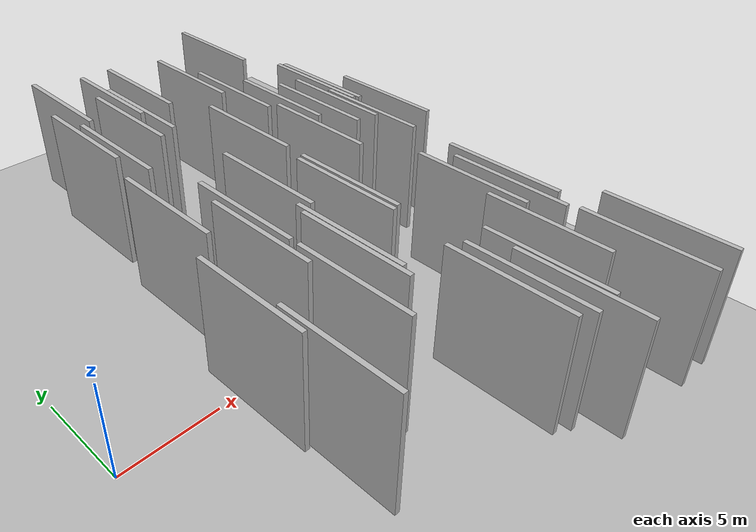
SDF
<?xml version="1.0" encoding="utf-8"?>

<sdf version="1.6">

   <world name="default">

      <gui fullscreen="0">

         <camera name="user_camera">

            <pose>-15 0 4.57585 0 0 0</pose>

            <view_controller>orbit</view_controller>

         </camera>

      </gui>

      <scene>

         <sky>

           <clouds>

             <speed>12</speed>

           </clouds>

         </sky>

         <ambient>0.4 0.4 0.4 1</ambient>

         <background>0.7 0.7 0.7 1</background>

         <shadows>1</shadows>

      </scene>

      <gravity>0 0 -9.8066</gravity>

      <magnetic_field>6e-06 2.3e-05 -4.2e-05</magnetic_field>

      <physics default="0" name="default_physics" type="ode">

         <ode>

            <solver>

               <type>quick</type>

               <iters>10</iters>

               <sor>1.0</sor>

               <use_dynamic_moi_rescaling>0</use_dynamic_moi_rescaling>

            </solver>

            <constraints>

               <cfm>0</cfm>

               <erp>0.2</erp>

               <contact_max_correcting_vel>100</contact_max_correcting_vel>

               <contact_surface_layer>0.001</contact_surface_layer>

            </constraints>

         </ode>

         <max_step_size>0.004</max_step_size>

         <real_time_factor>1</real_time_factor>

         <real_time_update_rate>250</real_time_update_rate>

      </physics>

      <light name="sun" type="directional">

         <cast_shadows>1</cast_shadows>

         <pose>0 0 10 0 0 0</pose>

         <diffuse>0.8 0.8 0.8 1</diffuse>

         <specular>0.2 0.2 0.2 1</specular>

         <attenuation>

            <range>1000</range>

            <constant>0.9</constant>

            <linear>0.01</linear>

            <quadratic>0.001</quadratic>

         </attenuation>

         <direction>-0.5 0.1 -0.9</direction>

      </light>

      <include>

         <name>ground_plane_1</name>

         <uri>model://HANNAS_ground_plane</uri>

         <pose>0 0 0  0 0 0</pose>

      </include>

      <include>

         <name>ground_plane_2</name>

         <uri>model://HANNAS_ground_plane</uri>

         <pose>100 0 0  0 0 0</pose>

      </include>

      <model name="HANNAS_wall_1">

         <static>1</static>

         <pose frame="">10.9724 -11.4936 5.0 0.000000 0.000000 1.570796</pose>

         <link name="link">

            <pose frame="">0 0 2.50 0 0 0</pose>

            <collision name="collision">

               <geometry>

                  <box>

                     <size>5.00 0.2 5.00</size>

                  </box>

               </geometry>

               <max_contacts>10</max_contacts>

               <surface>

                  <contact>

                     <ode/>

                  </contact>

                  <bounce/>

                  <friction>

                     <torsional>

                        <ode/>

                     </torsional>

                     <ode/>

                  </friction>

               </surface>

            </collision>

            <visual name="visual">

               <cast_shadows>0</cast_shadows>

               <geometry>

                  <box>

                     <size>5.00 0.2 5.00</size>

                  </box>

               </geometry>

               <material>

                  <script>

                     <uri>model://HANNAS_wall/materials/scripts</uri>

                     <uri>model://HANNAS_wall/materials/textures</uri>

                     <name>vrc/HANNAS_wall</name>

                  </script>

               </material>

            </visual>

            <self_collide>0</self_collide>

            <enable_wind>0</enable_wind>

            <kinematic>0</kinematic>

         </link>

      </model>

      <model name="HANNAS_wall_2">

         <static>1</static>

         <pose frame="">10.1718 -2.2187 5.0 0.000000 0.000000 1.570796</pose>

         <link name="link">

            <pose frame="">0 0 2.50 0 0 0</pose>

            <collision name="collision">

               <geometry>

                  <box>

                     <size>5.00 0.2 5.00</size>

                  </box>

               </geometry>

               <max_contacts>10</max_contacts>

               <surface>

                  <contact>

                     <ode/>

                  </contact>

                  <bounce/>

                  <friction>

                     <torsional>

                        <ode/>

                     </torsional>

                     <ode/>

                  </friction>

               </surface>

            </collision>

            <visual name="visual">

               <cast_shadows>0</cast_shadows>

               <geometry>

                  <box>

                     <size>5.00 0.2 5.00</size>

                  </box>

               </geometry>

               <material>

                  <script>

                     <uri>model://HANNAS_wall/materials/scripts</uri>

                     <uri>model://HANNAS_wall/materials/textures</uri>

                     <name>vrc/HANNAS_wall</name>

                  </script>

               </material>

            </visual>

            <self_collide>0</self_collide>

            <enable_wind>0</enable_wind>

            <kinematic>0</kinematic>

         </link>

      </model>

      <model name="HANNAS_wall_3">

         <static>1</static>

         <pose frame="">6.0777 -6.4689 5.0 0.000000 0.000000 1.570796</pose>

         <link name="link">

            <pose frame="">0 0 2.50 0 0 0</pose>

            <collision name="collision">

               <geometry>

                  <box>

                     <size>5.00 0.2 5.00</size>

                  </box>

               </geometry>

               <max_contacts>10</max_contacts>

               <surface>

                  <contact>

                     <ode/>

                  </contact>

                  <bounce/>

                  <friction>

                     <torsional>

                        <ode/>

                     </torsional>

                     <ode/>

                  </friction>

               </surface>

            </collision>

            <visual name="visual">

               <cast_shadows>0</cast_shadows>

               <geometry>

                  <box>

                     <size>5.00 0.2 5.00</size>

                  </box>

               </geometry>

               <material>

                  <script>

                     <uri>model://HANNAS_wall/materials/scripts</uri>

                     <uri>model://HANNAS_wall/materials/textures</uri>

                     <name>vrc/HANNAS_wall</name>

                  </script>

               </material>

            </visual>

            <self_collide>0</self_collide>

            <enable_wind>0</enable_wind>

            <kinematic>0</kinematic>

         </link>

      </model>

      <model name="HANNAS_wall_4">

         <static>1</static>

         <pose frame="">9.1397 10.0775 5.0 0.000000 0.000000 1.570796</pose>

         <link name="link">

            <pose frame="">0 0 2.50 0 0 0</pose>

            <collision name="collision">

               <geometry>

                  <box>

                     <size>5.00 0.2 5.00</size>

                  </box>

               </geometry>

               <max_contacts>10</max_contacts>

               <surface>

                  <contact>

                     <ode/>

                  </contact>

                  <bounce/>

                  <friction>

                     <torsional>

                        <ode/>

                     </torsional>

                     <ode/>

                  </friction>

               </surface>

            </collision>

            <visual name="visual">

               <cast_shadows>0</cast_shadows>

               <geometry>

                  <box>

                     <size>5.00 0.2 5.00</size>

                  </box>

               </geometry>

               <material>

                  <script>

                     <uri>model://HANNAS_wall/materials/scripts</uri>

                     <uri>model://HANNAS_wall/materials/textures</uri>

                     <name>vrc/HANNAS_wall</name>

                  </script>

               </material>

            </visual>

            <self_collide>0</self_collide>

            <enable_wind>0</enable_wind>

            <kinematic>0</kinematic>

         </link>

      </model>

      <model name="HANNAS_wall_5">

         <static>1</static>

         <pose frame="">7.4665 -5.1760 5.0 0.000000 0.000000 1.570796</pose>

         <link name="link">

            <pose frame="">0 0 2.50 0 0 0</pose>

            <collision name="collision">

               <geometry>

                  <box>

                     <size>5.00 0.2 5.00</size>

                  </box>

               </geometry>

               <max_contacts>10</max_contacts>

               <surface>

                  <contact>

                     <ode/>

                  </contact>

                  <bounce/>

                  <friction>

                     <torsional>

                        <ode/>

                     </torsional>

                     <ode/>

                  </friction>

               </surface>

            </collision>

            <visual name="visual">

               <cast_shadows>0</cast_shadows>

               <geometry>

                  <box>

                     <size>5.00 0.2 5.00</size>

                  </box>

               </geometry>

               <material>

                  <script>

                     <uri>model://HANNAS_wall/materials/scripts</uri>

                     <uri>model://HANNAS_wall/materials/textures</uri>

                     <name>vrc/HANNAS_wall</name>

                  </script>

               </material>

            </visual>

            <self_collide>0</self_collide>

            <enable_wind>0</enable_wind>

            <kinematic>0</kinematic>

         </link>

      </model>

      <model name="HANNAS_wall_6">

         <static>1</static>

         <pose frame="">8.0929 -0.0164 5.0 0.000000 0.000000 1.570796</pose>

         <link name="link">

            <pose frame="">0 0 2.50 0 0 0</pose>

            <collision name="collision">

               <geometry>

                  <box>

                     <size>5.00 0.2 5.00</size>

                  </box>

               </geometry>

               <max_contacts>10</max_contacts>

               <surface>

                  <contact>

                     <ode/>

                  </contact>

                  <bounce/>

                  <friction>

                     <torsional>

                        <ode/>

                     </torsional>

                     <ode/>

                  </friction>

               </surface>

            </collision>

            <visual name="visual">

               <cast_shadows>0</cast_shadows>

               <geometry>

                  <box>

                     <size>5.00 0.2 5.00</size>

                  </box>

               </geometry>

               <material>

                  <script>

                     <uri>model://HANNAS_wall/materials/scripts</uri>

                     <uri>model://HANNAS_wall/materials/textures</uri>

                     <name>vrc/HANNAS_wall</name>

                  </script>

               </material>

            </visual>

            <self_collide>0</self_collide>

            <enable_wind>0</enable_wind>

            <kinematic>0</kinematic>

         </link>

      </model>

      <model name="HANNAS_wall_7">

         <static>1</static>

         <pose frame="">14.3893 -6.3644 5.0 0.000000 0.000000 1.570796</pose>

         <link name="link">

            <pose frame="">0 0 2.50 0 0 0</pose>

            <collision name="collision">

               <geometry>

                  <box>

                     <size>5.00 0.2 5.00</size>

                  </box>

               </geometry>

               <max_contacts>10</max_contacts>

               <surface>

                  <contact>

                     <ode/>

                  </contact>

                  <bounce/>

                  <friction>

                     <torsional>

                        <ode/>

                     </torsional>

                     <ode/>

                  </friction>

               </surface>

            </collision>

            <visual name="visual">

               <cast_shadows>0</cast_shadows>

               <geometry>

                  <box>

                     <size>5.00 0.2 5.00</size>

                  </box>

               </geometry>

               <material>

                  <script>

                     <uri>model://HANNAS_wall/materials/scripts</uri>

                     <uri>model://HANNAS_wall/materials/textures</uri>

                     <name>vrc/HANNAS_wall</name>

                  </script>

               </material>

            </visual>

            <self_collide>0</self_collide>

            <enable_wind>0</enable_wind>

            <kinematic>0</kinematic>

         </link>

      </model>

      <model name="HANNAS_wall_8">

         <static>1</static>

         <pose frame="">3.3117 -4.7731 5.0 0.000000 0.000000 1.570796</pose>

         <link name="link">

            <pose frame="">0 0 2.50 0 0 0</pose>

            <collision name="collision">

               <geometry>

                  <box>

                     <size>5.00 0.2 5.00</size>

                  </box>

               </geometry>

               <max_contacts>10</max_contacts>

               <surface>

                  <contact>

                     <ode/>

                  </contact>

                  <bounce/>

                  <friction>

                     <torsional>

                        <ode/>

                     </torsional>

                     <ode/>

                  </friction>

               </surface>

            </collision>

            <visual name="visual">

               <cast_shadows>0</cast_shadows>

               <geometry>

                  <box>

                     <size>5.00 0.2 5.00</size>

                  </box>

               </geometry>

               <material>

                  <script>

                     <uri>model://HANNAS_wall/materials/scripts</uri>

                     <uri>model://HANNAS_wall/materials/textures</uri>

                     <name>vrc/HANNAS_wall</name>

                  </script>

               </material>

            </visual>

            <self_collide>0</self_collide>

            <enable_wind>0</enable_wind>

            <kinematic>0</kinematic>

         </link>

      </model>

      <model name="HANNAS_wall_9">

         <static>1</static>

         <pose frame="">7.1729 7.8223 5.0 0.000000 0.000000 1.570796</pose>

         <link name="link">

            <pose frame="">0 0 2.50 0 0 0</pose>

            <collision name="collision">

               <geometry>

                  <box>

                     <size>5.00 0.2 5.00</size>

                  </box>

               </geometry>

               <max_contacts>10</max_contacts>

               <surface>

                  <contact>

                     <ode/>

                  </contact>

                  <bounce/>

                  <friction>

                     <torsional>

                        <ode/>

                     </torsional>

                     <ode/>

                  </friction>

               </surface>

            </collision>

            <visual name="visual">

               <cast_shadows>0</cast_shadows>

               <geometry>

                  <box>

                     <size>5.00 0.2 5.00</size>

                  </box>

               </geometry>

               <material>

                  <script>

                     <uri>model://HANNAS_wall/materials/scripts</uri>

                     <uri>model://HANNAS_wall/materials/textures</uri>

                     <name>vrc/HANNAS_wall</name>

                  </script>

               </material>

            </visual>

            <self_collide>0</self_collide>

            <enable_wind>0</enable_wind>

            <kinematic>0</kinematic>

         </link>

      </model>

      <model name="HANNAS_wall_10">

         <static>1</static>

         <pose frame="">4.9095 7.5499 5.0 0.000000 0.000000 1.570796</pose>

         <link name="link">

            <pose frame="">0 0 2.50 0 0 0</pose>

            <collision name="collision">

               <geometry>

                  <box>

                     <size>5.00 0.2 5.00</size>

                  </box>

               </geometry>

               <max_contacts>10</max_contacts>

               <surface>

                  <contact>

                     <ode/>

                  </contact>

                  <bounce/>

                  <friction>

                     <torsional>

                        <ode/>

                     </torsional>

                     <ode/>

                  </friction>

               </surface>

            </collision>

            <visual name="visual">

               <cast_shadows>0</cast_shadows>

               <geometry>

                  <box>

                     <size>5.00 0.2 5.00</size>

                  </box>

               </geometry>

               <material>

                  <script>

                     <uri>model://HANNAS_wall/materials/scripts</uri>

                     <uri>model://HANNAS_wall/materials/textures</uri>

                     <name>vrc/HANNAS_wall</name>

                  </script>

               </material>

            </visual>

            <self_collide>0</self_collide>

            <enable_wind>0</enable_wind>

            <kinematic>0</kinematic>

         </link>

      </model>

      <model name="HANNAS_wall_11">

         <static>1</static>

         <pose frame="">15.0552 1.2706 5.0 0.000000 0.000000 1.570796</pose>

         <link name="link">

            <pose frame="">0 0 2.50 0 0 0</pose>

            <collision name="collision">

               <geometry>

                  <box>

                     <size>5.00 0.2 5.00</size>

                  </box>

               </geometry>

               <max_contacts>10</max_contacts>

               <surface>

                  <contact>

                     <ode/>

                  </contact>

                  <bounce/>

                  <friction>

                     <torsional>

                        <ode/>

                     </torsional>

                     <ode/>

                  </friction>

               </surface>

            </collision>

            <visual name="visual">

               <cast_shadows>0</cast_shadows>

               <geometry>

                  <box>

                     <size>5.00 0.2 5.00</size>

                  </box>

               </geometry>

               <material>

                  <script>

                     <uri>model://HANNAS_wall/materials/scripts</uri>

                     <uri>model://HANNAS_wall/materials/textures</uri>

                     <name>vrc/HANNAS_wall</name>

                  </script>

               </material>

            </visual>

            <self_collide>0</self_collide>

            <enable_wind>0</enable_wind>

            <kinematic>0</kinematic>

         </link>

      </model>

      <model name="HANNAS_wall_12">

         <static>1</static>

         <pose frame="">12.9910 4.7460 5.0 0.000000 0.000000 1.570796</pose>

         <link name="link">

            <pose frame="">0 0 2.50 0 0 0</pose>

            <collision name="collision">

               <geometry>

                  <box>

                     <size>5.00 0.2 5.00</size>

                  </box>

               </geometry>

               <max_contacts>10</max_contacts>

               <surface>

                  <contact>

                     <ode/>

                  </contact>

                  <bounce/>

                  <friction>

                     <torsional>

                        <ode/>

                     </torsional>

                     <ode/>

                  </friction>

               </surface>

            </collision>

            <visual name="visual">

               <cast_shadows>0</cast_shadows>

               <geometry>

                  <box>

                     <size>5.00 0.2 5.00</size>

                  </box>

               </geometry>

               <material>

                  <script>

                     <uri>model://HANNAS_wall/materials/scripts</uri>

                     <uri>model://HANNAS_wall/materials/textures</uri>

                     <name>vrc/HANNAS_wall</name>

                  </script>

               </material>

            </visual>

            <self_collide>0</self_collide>

            <enable_wind>0</enable_wind>

            <kinematic>0</kinematic>

         </link>

      </model>

      <model name="HANNAS_wall_13">

         <static>1</static>

         <pose frame="">15.5084 4.8284 5.0 0.000000 0.000000 1.570796</pose>

         <link name="link">

            <pose frame="">0 0 2.50 0 0 0</pose>

            <collision name="collision">

               <geometry>

                  <box>

                     <size>5.00 0.2 5.00</size>

                  </box>

               </geometry>

               <max_contacts>10</max_contacts>

               <surface>

                  <contact>

                     <ode/>

                  </contact>

                  <bounce/>

                  <friction>

                     <torsional>

                        <ode/>

                     </torsional>

                     <ode/>

                  </friction>

               </surface>

            </collision>

            <visual name="visual">

               <cast_shadows>0</cast_shadows>

               <geometry>

                  <box>

                     <size>5.00 0.2 5.00</size>

                  </box>

               </geometry>

               <material>

                  <script>

                     <uri>model://HANNAS_wall/materials/scripts</uri>

                     <uri>model://HANNAS_wall/materials/textures</uri>

                     <name>vrc/HANNAS_wall</name>

                  </script>

               </material>

            </visual>

            <self_collide>0</self_collide>

            <enable_wind>0</enable_wind>

            <kinematic>0</kinematic>

         </link>

      </model>

      <model name="HANNAS_wall_14">

         <static>1</static>

         <pose frame="">16.1221 -11.7386 5.0 0.000000 0.000000 1.570796</pose>

         <link name="link">

            <pose frame="">0 0 2.50 0 0 0</pose>

            <collision name="collision">

               <geometry>

                  <box>

                     <size>5.00 0.2 5.00</size>

                  </box>

               </geometry>

               <max_contacts>10</max_contacts>

               <surface>

                  <contact>

                     <ode/>

                  </contact>

                  <bounce/>

                  <friction>

                     <torsional>

                        <ode/>

                     </torsional>

                     <ode/>

                  </friction>

               </surface>

            </collision>

            <visual name="visual">

               <cast_shadows>0</cast_shadows>

               <geometry>

                  <box>

                     <size>5.00 0.2 5.00</size>

                  </box>

               </geometry>

               <material>

                  <script>

                     <uri>model://HANNAS_wall/materials/scripts</uri>

                     <uri>model://HANNAS_wall/materials/textures</uri>

                     <name>vrc/HANNAS_wall</name>

                  </script>

               </material>

            </visual>

            <self_collide>0</self_collide>

            <enable_wind>0</enable_wind>

            <kinematic>0</kinematic>

         </link>

      </model>

      <model name="HANNAS_wall_15">

         <static>1</static>

         <pose frame="">10.2262 3.6799 5.0 0.000000 0.000000 1.570796</pose>

         <link name="link">

            <pose frame="">0 0 2.50 0 0 0</pose>

            <collision name="collision">

               <geometry>

                  <box>

                     <size>5.00 0.2 5.00</size>

                  </box>

               </geometry>

               <max_contacts>10</max_contacts>

               <surface>

                  <contact>

                     <ode/>

                  </contact>

                  <bounce/>

                  <friction>

                     <torsional>

                        <ode/>

                     </torsional>

                     <ode/>

                  </friction>

               </surface>

            </collision>

            <visual name="visual">

               <cast_shadows>0</cast_shadows>

               <geometry>

                  <box>

                     <size>5.00 0.2 5.00</size>

                  </box>

               </geometry>

               <material>

                  <script>

                     <uri>model://HANNAS_wall/materials/scripts</uri>

                     <uri>model://HANNAS_wall/materials/textures</uri>

                     <name>vrc/HANNAS_wall</name>

                  </script>

               </material>

            </visual>

            <self_collide>0</self_collide>

            <enable_wind>0</enable_wind>

            <kinematic>0</kinematic>

         </link>

      </model>

      <model name="HANNAS_wall_16">

         <static>1</static>

         <pose frame="">13.5578 -5.2801 5.0 0.000000 0.000000 1.570796</pose>

         <link name="link">

            <pose frame="">0 0 2.50 0 0 0</pose>

            <collision name="collision">

               <geometry>

                  <box>

                     <size>5.00 0.2 5.00</size>

                  </box>

               </geometry>

               <max_contacts>10</max_contacts>

               <surface>

                  <contact>

                     <ode/>

                  </contact>

                  <bounce/>

                  <friction>

                     <torsional>

                        <ode/>

                     </torsional>

                     <ode/>

                  </friction>

               </surface>

            </collision>

            <visual name="visual">

               <cast_shadows>0</cast_shadows>

               <geometry>

                  <box>

                     <size>5.00 0.2 5.00</size>

                  </box>

               </geometry>

               <material>

                  <script>

                     <uri>model://HANNAS_wall/materials/scripts</uri>

                     <uri>model://HANNAS_wall/materials/textures</uri>

                     <name>vrc/HANNAS_wall</name>

                  </script>

               </material>

            </visual>

            <self_collide>0</self_collide>

            <enable_wind>0</enable_wind>

            <kinematic>0</kinematic>

         </link>

      </model>

      <model name="HANNAS_wall_17">

         <static>1</static>

         <pose frame="">11.4427 9.3307 5.0 0.000000 0.000000 1.570796</pose>

         <link name="link">

            <pose frame="">0 0 2.50 0 0 0</pose>

            <collision name="collision">

               <geometry>

                  <box>

                     <size>5.00 0.2 5.00</size>

                  </box>

               </geometry>

               <max_contacts>10</max_contacts>

               <surface>

                  <contact>

                     <ode/>

                  </contact>

                  <bounce/>

                  <friction>

                     <torsional>

                        <ode/>

                     </torsional>

                     <ode/>

                  </friction>

               </surface>

            </collision>

            <visual name="visual">

               <cast_shadows>0</cast_shadows>

               <geometry>

                  <box>

                     <size>5.00 0.2 5.00</size>

                  </box>

               </geometry>

               <material>

                  <script>

                     <uri>model://HANNAS_wall/materials/scripts</uri>

                     <uri>model://HANNAS_wall/materials/textures</uri>

                     <name>vrc/HANNAS_wall</name>

                  </script>

               </material>

            </visual>

            <self_collide>0</self_collide>

            <enable_wind>0</enable_wind>

            <kinematic>0</kinematic>

         </link>

      </model>

      <model name="HANNAS_wall_18">

         <static>1</static>

         <pose frame="">12.0053 6.8655 5.0 0.000000 0.000000 1.570796</pose>

         <link name="link">

            <pose frame="">0 0 2.50 0 0 0</pose>

            <collision name="collision">

               <geometry>

                  <box>

                     <size>5.00 0.2 5.00</size>

                  </box>

               </geometry>

               <max_contacts>10</max_contacts>

               <surface>

                  <contact>

                     <ode/>

                  </contact>

                  <bounce/>

                  <friction>

                     <torsional>

                        <ode/>

                     </torsional>

                     <ode/>

                  </friction>

               </surface>

            </collision>

            <visual name="visual">

               <cast_shadows>0</cast_shadows>

               <geometry>

                  <box>

                     <size>5.00 0.2 5.00</size>

                  </box>

               </geometry>

               <material>

                  <script>

                     <uri>model://HANNAS_wall/materials/scripts</uri>

                     <uri>model://HANNAS_wall/materials/textures</uri>

                     <name>vrc/HANNAS_wall</name>

                  </script>

               </material>

            </visual>

            <self_collide>0</self_collide>

            <enable_wind>0</enable_wind>

            <kinematic>0</kinematic>

         </link>

      </model>

      <model name="HANNAS_wall_19">

         <static>1</static>

         <pose frame="">9.8760 -2.3170 5.0 0.000000 0.000000 1.570796</pose>

         <link name="link">

            <pose frame="">0 0 2.50 0 0 0</pose>

            <collision name="collision">

               <geometry>

                  <box>

                     <size>5.00 0.2 5.00</size>

                  </box>

               </geometry>

               <max_contacts>10</max_contacts>

               <surface>

                  <contact>

                     <ode/>

                  </contact>

                  <bounce/>

                  <friction>

                     <torsional>

                        <ode/>

                     </torsional>

                     <ode/>

                  </friction>

               </surface>

            </collision>

            <visual name="visual">

               <cast_shadows>0</cast_shadows>

               <geometry>

                  <box>

                     <size>5.00 0.2 5.00</size>

                  </box>

               </geometry>

               <material>

                  <script>

                     <uri>model://HANNAS_wall/materials/scripts</uri>

                     <uri>model://HANNAS_wall/materials/textures</uri>

                     <name>vrc/HANNAS_wall</name>

                  </script>

               </material>

            </visual>

            <self_collide>0</self_collide>

            <enable_wind>0</enable_wind>

            <kinematic>0</kinematic>

         </link>

      </model>

      <model name="HANNAS_wall_20">

         <static>1</static>

         <pose frame="">15.2842 4.9964 5.0 0.000000 0.000000 1.570796</pose>

         <link name="link">

            <pose frame="">0 0 2.50 0 0 0</pose>

            <collision name="collision">

               <geometry>

                  <box>

                     <size>5.00 0.2 5.00</size>

                  </box>

               </geometry>

               <max_contacts>10</max_contacts>

               <surface>

                  <contact>

                     <ode/>

                  </contact>

                  <bounce/>

                  <friction>

                     <torsional>

                        <ode/>

                     </torsional>

                     <ode/>

                  </friction>

               </surface>

            </collision>

            <visual name="visual">

               <cast_shadows>0</cast_shadows>

               <geometry>

                  <box>

                     <size>5.00 0.2 5.00</size>

                  </box>

               </geometry>

               <material>

                  <script>

                     <uri>model://HANNAS_wall/materials/scripts</uri>

                     <uri>model://HANNAS_wall/materials/textures</uri>

                     <name>vrc/HANNAS_wall</name>

                  </script>

               </material>

            </visual>

            <self_collide>0</self_collide>

            <enable_wind>0</enable_wind>

            <kinematic>0</kinematic>

         </link>

      </model>

      <model name="HANNAS_wall_21">

         <static>1</static>

         <pose frame="">14.5709 -11.7439 5.0 0.000000 0.000000 1.570796</pose>

         <link name="link">

            <pose frame="">0 0 2.50 0 0 0</pose>

            <collision name="collision">

               <geometry>

                  <box>

                     <size>5.00 0.2 5.00</size>

                  </box>

               </geometry>

               <max_contacts>10</max_contacts>

               <surface>

                  <contact>

                     <ode/>

                  </contact>

                  <bounce/>

                  <friction>

                     <torsional>

                        <ode/>

                     </torsional>

                     <ode/>

                  </friction>

               </surface>

            </collision>

            <visual name="visual">

               <cast_shadows>0</cast_shadows>

               <geometry>

                  <box>

                     <size>5.00 0.2 5.00</size>

                  </box>

               </geometry>

               <material>

                  <script>

                     <uri>model://HANNAS_wall/materials/scripts</uri>

                     <uri>model://HANNAS_wall/materials/textures</uri>

                     <name>vrc/HANNAS_wall</name>

                  </script>

               </material>

            </visual>

            <self_collide>0</self_collide>

            <enable_wind>0</enable_wind>

            <kinematic>0</kinematic>

         </link>

      </model>

      <model name="HANNAS_wall_22">

         <static>1</static>

         <pose frame="">4.3378 1.0388 5.0 0.000000 0.000000 1.570796</pose>

         <link name="link">

            <pose frame="">0 0 2.50 0 0 0</pose>

            <collision name="collision">

               <geometry>

                  <box>

                     <size>5.00 0.2 5.00</size>

                  </box>

               </geometry>

               <max_contacts>10</max_contacts>

               <surface>

                  <contact>

                     <ode/>

                  </contact>

                  <bounce/>

                  <friction>

                     <torsional>

                        <ode/>

                     </torsional>

                     <ode/>

                  </friction>

               </surface>

            </collision>

            <visual name="visual">

               <cast_shadows>0</cast_shadows>

               <geometry>

                  <box>

                     <size>5.00 0.2 5.00</size>

                  </box>

               </geometry>

               <material>

                  <script>

                     <uri>model://HANNAS_wall/materials/scripts</uri>

                     <uri>model://HANNAS_wall/materials/textures</uri>

                     <name>vrc/HANNAS_wall</name>

                  </script>

               </material>

            </visual>

            <self_collide>0</self_collide>

            <enable_wind>0</enable_wind>

            <kinematic>0</kinematic>

         </link>

      </model>

      <model name="HANNAS_wall_23">

         <static>1</static>

         <pose frame="">14.9870 -5.6555 5.0 0.000000 0.000000 1.570796</pose>

         <link name="link">

            <pose frame="">0 0 2.50 0 0 0</pose>

            <collision name="collision">

               <geometry>

                  <box>

                     <size>5.00 0.2 5.00</size>

                  </box>

               </geometry>

               <max_contacts>10</max_contacts>

               <surface>

                  <contact>

                     <ode/>

                  </contact>

                  <bounce/>

                  <friction>

                     <torsional>

                        <ode/>

                     </torsional>

                     <ode/>

                  </friction>

               </surface>

            </collision>

            <visual name="visual">

               <cast_shadows>0</cast_shadows>

               <geometry>

                  <box>

                     <size>5.00 0.2 5.00</size>

                  </box>

               </geometry>

               <material>

                  <script>

                     <uri>model://HANNAS_wall/materials/scripts</uri>

                     <uri>model://HANNAS_wall/materials/textures</uri>

                     <name>vrc/HANNAS_wall</name>

                  </script>

               </material>

            </visual>

            <self_collide>0</self_collide>

            <enable_wind>0</enable_wind>

            <kinematic>0</kinematic>

         </link>

      </model>

      <model name="HANNAS_wall_24">

         <static>1</static>

         <pose frame="">13.8577 3.3101 5.0 0.000000 0.000000 1.570796</pose>

         <link name="link">

            <pose frame="">0 0 2.50 0 0 0</pose>

            <collision name="collision">

               <geometry>

                  <box>

                     <size>5.00 0.2 5.00</size>

                  </box>

               </geometry>

               <max_contacts>10</max_contacts>

               <surface>

                  <contact>

                     <ode/>

                  </contact>

                  <bounce/>

                  <friction>

                     <torsional>

                        <ode/>

                     </torsional>

                     <ode/>

                  </friction>

               </surface>

            </collision>

            <visual name="visual">

               <cast_shadows>0</cast_shadows>

               <geometry>

                  <box>

                     <size>5.00 0.2 5.00</size>

                  </box>

               </geometry>

               <material>

                  <script>

                     <uri>model://HANNAS_wall/materials/scripts</uri>

                     <uri>model://HANNAS_wall/materials/textures</uri>

                     <name>vrc/HANNAS_wall</name>

                  </script>

               </material>

            </visual>

            <self_collide>0</self_collide>

            <enable_wind>0</enable_wind>

            <kinematic>0</kinematic>

         </link>

      </model>

      <model name="HANNAS_wall_25">

         <static>1</static>

         <pose frame="">3.6063 -8.3145 5.0 0.000000 0.000000 1.570796</pose>

         <link name="link">

            <pose frame="">0 0 2.50 0 0 0</pose>

            <collision name="collision">

               <geometry>

                  <box>

                     <size>5.00 0.2 5.00</size>

                  </box>

               </geometry>

               <max_contacts>10</max_contacts>

               <surface>

                  <contact>

                     <ode/>

                  </contact>

                  <bounce/>

                  <friction>

                     <torsional>

                        <ode/>

                     </torsional>

                     <ode/>

                  </friction>

               </surface>

            </collision>

            <visual name="visual">

               <cast_shadows>0</cast_shadows>

               <geometry>

                  <box>

                     <size>5.00 0.2 5.00</size>

                  </box>

               </geometry>

               <material>

                  <script>

                     <uri>model://HANNAS_wall/materials/scripts</uri>

                     <uri>model://HANNAS_wall/materials/textures</uri>

                     <name>vrc/HANNAS_wall</name>

                  </script>

               </material>

            </visual>

            <self_collide>0</self_collide>

            <enable_wind>0</enable_wind>

            <kinematic>0</kinematic>

         </link>

      </model>

      <model name="HANNAS_wall_26">

         <static>1</static>

         <pose frame="">13.0564 -8.9126 5.0 0.000000 0.000000 1.570796</pose>

         <link name="link">

            <pose frame="">0 0 2.50 0 0 0</pose>

            <collision name="collision">

               <geometry>

                  <box>

                     <size>5.00 0.2 5.00</size>

                  </box>

               </geometry>

               <max_contacts>10</max_contacts>

               <surface>

                  <contact>

                     <ode/>

                  </contact>

                  <bounce/>

                  <friction>

                     <torsional>

                        <ode/>

                     </torsional>

                     <ode/>

                  </friction>

               </surface>

            </collision>

            <visual name="visual">

               <cast_shadows>0</cast_shadows>

               <geometry>

                  <box>

                     <size>5.00 0.2 5.00</size>

                  </box>

               </geometry>

               <material>

                  <script>

                     <uri>model://HANNAS_wall/materials/scripts</uri>

                     <uri>model://HANNAS_wall/materials/textures</uri>

                     <name>vrc/HANNAS_wall</name>

                  </script>

               </material>

            </visual>

            <self_collide>0</self_collide>

            <enable_wind>0</enable_wind>

            <kinematic>0</kinematic>

         </link>

      </model>

      <model name="HANNAS_wall_27">

         <static>1</static>

         <pose frame="">6.0910 -1.1146 5.0 0.000000 0.000000 1.570796</pose>

         <link name="link">

            <pose frame="">0 0 2.50 0 0 0</pose>

            <collision name="collision">

               <geometry>

                  <box>

                     <size>5.00 0.2 5.00</size>

                  </box>

               </geometry>

               <max_contacts>10</max_contacts>

               <surface>

                  <contact>

                     <ode/>

                  </contact>

                  <bounce/>

                  <friction>

                     <torsional>

                        <ode/>

                     </torsional>

                     <ode/>

                  </friction>

               </surface>

            </collision>

            <visual name="visual">

               <cast_shadows>0</cast_shadows>

               <geometry>

                  <box>

                     <size>5.00 0.2 5.00</size>

                  </box>

               </geometry>

               <material>

                  <script>

                     <uri>model://HANNAS_wall/materials/scripts</uri>

                     <uri>model://HANNAS_wall/materials/textures</uri>

                     <name>vrc/HANNAS_wall</name>

                  </script>

               </material>

            </visual>

            <self_collide>0</self_collide>

            <enable_wind>0</enable_wind>

            <kinematic>0</kinematic>

         </link>

      </model>

      <model name="HANNAS_wall_28">

         <static>1</static>

         <pose frame="">9.5137 -9.8451 5.0 0.000000 0.000000 1.570796</pose>

         <link name="link">

            <pose frame="">0 0 2.50 0 0 0</pose>

            <collision name="collision">

               <geometry>

                  <box>

                     <size>5.00 0.2 5.00</size>

                  </box>

               </geometry>

               <max_contacts>10</max_contacts>

               <surface>

                  <contact>

                     <ode/>

                  </contact>

                  <bounce/>

                  <friction>

                     <torsional>

                        <ode/>

                     </torsional>

                     <ode/>

                  </friction>

               </surface>

            </collision>

            <visual name="visual">

               <cast_shadows>0</cast_shadows>

               <geometry>

                  <box>

                     <size>5.00 0.2 5.00</size>

                  </box>

               </geometry>

               <material>

                  <script>

                     <uri>model://HANNAS_wall/materials/scripts</uri>

                     <uri>model://HANNAS_wall/materials/textures</uri>

                     <name>vrc/HANNAS_wall</name>

                  </script>

               </material>

            </visual>

            <self_collide>0</self_collide>

            <enable_wind>0</enable_wind>

            <kinematic>0</kinematic>

         </link>

      </model>

      <model name="HANNAS_wall_29">

         <static>1</static>

         <pose frame="">10.0942 -10.1638 5.0 0.000000 0.000000 1.570796</pose>

         <link name="link">

            <pose frame="">0 0 2.50 0 0 0</pose>

            <collision name="collision">

               <geometry>

                  <box>

                     <size>5.00 0.2 5.00</size>

                  </box>

               </geometry>

               <max_contacts>10</max_contacts>

               <surface>

                  <contact>

                     <ode/>

                  </contact>

                  <bounce/>

                  <friction>

                     <torsional>

                        <ode/>

                     </torsional>

                     <ode/>

                  </friction>

               </surface>

            </collision>

            <visual name="visual">

               <cast_shadows>0</cast_shadows>

               <geometry>

                  <box>

                     <size>5.00 0.2 5.00</size>

                  </box>

               </geometry>

               <material>

                  <script>

                     <uri>model://HANNAS_wall/materials/scripts</uri>

                     <uri>model://HANNAS_wall/materials/textures</uri>

                     <name>vrc/HANNAS_wall</name>

                  </script>

               </material>

            </visual>

            <self_collide>0</self_collide>

            <enable_wind>0</enable_wind>

            <kinematic>0</kinematic>

         </link>

      </model>

      <model name="HANNAS_wall_30">

         <static>1</static>

         <pose frame="">5.3313 5.9450 5.0 0.000000 0.000000 1.570796</pose>

         <link name="link">

            <pose frame="">0 0 2.50 0 0 0</pose>

            <collision name="collision">

               <geometry>

                  <box>

                     <size>5.00 0.2 5.00</size>

                  </box>

               </geometry>

               <max_contacts>10</max_contacts>

               <surface>

                  <contact>

                     <ode/>

                  </contact>

                  <bounce/>

                  <friction>

                     <torsional>

                        <ode/>

                     </torsional>

                     <ode/>

                  </friction>

               </surface>

            </collision>

            <visual name="visual">

               <cast_shadows>0</cast_shadows>

               <geometry>

                  <box>

                     <size>5.00 0.2 5.00</size>

                  </box>

               </geometry>

               <material>

                  <script>

                     <uri>model://HANNAS_wall/materials/scripts</uri>

                     <uri>model://HANNAS_wall/materials/textures</uri>

                     <name>vrc/HANNAS_wall</name>

                  </script>

               </material>

            </visual>

            <self_collide>0</self_collide>

            <enable_wind>0</enable_wind>

            <kinematic>0</kinematic>

         </link>

      </model>

      <model name="HANNAS_wall_31">

         <static>1</static>

         <pose frame="">7.6839 -4.6787 5.0 0.000000 0.000000 1.570796</pose>

         <link name="link">

            <pose frame="">0 0 2.50 0 0 0</pose>

            <collision name="collision">

               <geometry>

                  <box>

                     <size>5.00 0.2 5.00</size>

                  </box>

               </geometry>

               <max_contacts>10</max_contacts>

               <surface>

                  <contact>

                     <ode/>

                  </contact>

                  <bounce/>

                  <friction>

                     <torsional>

                        <ode/>

                     </torsional>

                     <ode/>

                  </friction>

               </surface>

            </collision>

            <visual name="visual">

               <cast_shadows>0</cast_shadows>

               <geometry>

                  <box>

                     <size>5.00 0.2 5.00</size>

                  </box>

               </geometry>

               <material>

                  <script>

                     <uri>model://HANNAS_wall/materials/scripts</uri>

                     <uri>model://HANNAS_wall/materials/textures</uri>

                     <name>vrc/HANNAS_wall</name>

                  </script>

               </material>

            </visual>

            <self_collide>0</self_collide>

            <enable_wind>0</enable_wind>

            <kinematic>0</kinematic>

         </link>

      </model>

      <model name="HANNAS_wall_32">

         <static>1</static>

         <pose frame="">14.4643 11.5692 5.0 0.000000 0.000000 1.570796</pose>

         <link name="link">

            <pose frame="">0 0 2.50 0 0 0</pose>

            <collision name="collision">

               <geometry>

                  <box>

                     <size>5.00 0.2 5.00</size>

                  </box>

               </geometry>

               <max_contacts>10</max_contacts>

               <surface>

                  <contact>

                     <ode/>

                  </contact>

                  <bounce/>

                  <friction>

                     <torsional>

                        <ode/>

                     </torsional>

                     <ode/>

                  </friction>

               </surface>

            </collision>

            <visual name="visual">

               <cast_shadows>0</cast_shadows>

               <geometry>

                  <box>

                     <size>5.00 0.2 5.00</size>

                  </box>

               </geometry>

               <material>

                  <script>

                     <uri>model://HANNAS_wall/materials/scripts</uri>

                     <uri>model://HANNAS_wall/materials/textures</uri>

                     <name>vrc/HANNAS_wall</name>

                  </script>

               </material>

            </visual>

            <self_collide>0</self_collide>

            <enable_wind>0</enable_wind>

            <kinematic>0</kinematic>

         </link>

      </model>

      <model name="HANNAS_wall_33">

         <static>1</static>

         <pose frame="">16.5656 1.8389 5.0 0.000000 0.000000 1.570796</pose>

         <link name="link">

            <pose frame="">0 0 2.50 0 0 0</pose>

            <collision name="collision">

               <geometry>

                  <box>

                     <size>5.00 0.2 5.00</size>

                  </box>

               </geometry>

               <max_contacts>10</max_contacts>

               <surface>

                  <contact>

                     <ode/>

                  </contact>

                  <bounce/>

                  <friction>

                     <torsional>

                        <ode/>

                     </torsional>

                     <ode/>

                  </friction>

               </surface>

            </collision>

            <visual name="visual">

               <cast_shadows>0</cast_shadows>

               <geometry>

                  <box>

                     <size>5.00 0.2 5.00</size>

                  </box>

               </geometry>

               <material>

                  <script>

                     <uri>model://HANNAS_wall/materials/scripts</uri>

                     <uri>model://HANNAS_wall/materials/textures</uri>

                     <name>vrc/HANNAS_wall</name>

                  </script>

               </material>

            </visual>

            <self_collide>0</self_collide>

            <enable_wind>0</enable_wind>

            <kinematic>0</kinematic>

         </link>

      </model>

      <model name="HANNAS_wall_34">

         <static>1</static>

         <pose frame="">12.4327 1.7697 5.0 0.000000 0.000000 1.570796</pose>

         <link name="link">

            <pose frame="">0 0 2.50 0 0 0</pose>

            <collision name="collision">

               <geometry>

                  <box>

                     <size>5.00 0.2 5.00</size>

                  </box>

               </geometry>

               <max_contacts>10</max_contacts>

               <surface>

                  <contact>

                     <ode/>

                  </contact>

                  <bounce/>

                  <friction>

                     <torsional>

                        <ode/>

                     </torsional>

                     <ode/>

                  </friction>

               </surface>

            </collision>

            <visual name="visual">

               <cast_shadows>0</cast_shadows>

               <geometry>

                  <box>

                     <size>5.00 0.2 5.00</size>

                  </box>

               </geometry>

               <material>

                  <script>

                     <uri>model://HANNAS_wall/materials/scripts</uri>

                     <uri>model://HANNAS_wall/materials/textures</uri>

                     <name>vrc/HANNAS_wall</name>

                  </script>

               </material>

            </visual>

            <self_collide>0</self_collide>

            <enable_wind>0</enable_wind>

            <kinematic>0</kinematic>

         </link>

      </model>

      <model name="HANNAS_wall_35">

         <static>1</static>

         <pose frame="">5.7958 10.9968 5.0 0.000000 0.000000 1.570796</pose>

         <link name="link">

            <pose frame="">0 0 2.50 0 0 0</pose>

            <collision name="collision">

               <geometry>

                  <box>

                     <size>5.00 0.2 5.00</size>

                  </box>

               </geometry>

               <max_contacts>10</max_contacts>

               <surface>

                  <contact>

                     <ode/>

                  </contact>

                  <bounce/>

                  <friction>

                     <torsional>

                        <ode/>

                     </torsional>

                     <ode/>

                  </friction>

               </surface>

            </collision>

            <visual name="visual">

               <cast_shadows>0</cast_shadows>

               <geometry>

                  <box>

                     <size>5.00 0.2 5.00</size>

                  </box>

               </geometry>

               <material>

                  <script>

                     <uri>model://HANNAS_wall/materials/scripts</uri>

                     <uri>model://HANNAS_wall/materials/textures</uri>

                     <name>vrc/HANNAS_wall</name>

                  </script>

               </material>

            </visual>

            <self_collide>0</self_collide>

            <enable_wind>0</enable_wind>

            <kinematic>0</kinematic>

         </link>

      </model>

      <model name="HANNAS_wall_36">

         <static>1</static>

         <pose frame="">11.2190 -10.0994 5.0 0.000000 0.000000 1.570796</pose>

         <link name="link">

            <pose frame="">0 0 2.50 0 0 0</pose>

            <collision name="collision">

               <geometry>

                  <box>

                     <size>5.00 0.2 5.00</size>

                  </box>

               </geometry>

               <max_contacts>10</max_contacts>

               <surface>

                  <contact>

                     <ode/>

                  </contact>

                  <bounce/>

                  <friction>

                     <torsional>

                        <ode/>

                     </torsional>

                     <ode/>

                  </friction>

               </surface>

            </collision>

            <visual name="visual">

               <cast_shadows>0</cast_shadows>

               <geometry>

                  <box>

                     <size>5.00 0.2 5.00</size>

                  </box>

               </geometry>

               <material>

                  <script>

                     <uri>model://HANNAS_wall/materials/scripts</uri>

                     <uri>model://HANNAS_wall/materials/textures</uri>

                     <name>vrc/HANNAS_wall</name>

                  </script>

               </material>

            </visual>

            <self_collide>0</self_collide>

            <enable_wind>0</enable_wind>

            <kinematic>0</kinematic>

         </link>

      </model>

      <model name="HANNAS_wall_37">

         <static>1</static>

         <pose frame="">7.9475 8.1347 5.0 0.000000 0.000000 1.570796</pose>

         <link name="link">

            <pose frame="">0 0 2.50 0 0 0</pose>

            <collision name="collision">

               <geometry>

                  <box>

                     <size>5.00 0.2 5.00</size>

                  </box>

               </geometry>

               <max_contacts>10</max_contacts>

               <surface>

                  <contact>

                     <ode/>

                  </contact>

                  <bounce/>

                  <friction>

                     <torsional>

                        <ode/>

                     </torsional>

                     <ode/>

                  </friction>

               </surface>

            </collision>

            <visual name="visual">

               <cast_shadows>0</cast_shadows>

               <geometry>

                  <box>

                     <size>5.00 0.2 5.00</size>

                  </box>

               </geometry>

               <material>

                  <script>

                     <uri>model://HANNAS_wall/materials/scripts</uri>

                     <uri>model://HANNAS_wall/materials/textures</uri>

                     <name>vrc/HANNAS_wall</name>

                  </script>

               </material>

            </visual>

            <self_collide>0</self_collide>

            <enable_wind>0</enable_wind>

            <kinematic>0</kinematic>

         </link>

      </model>

      <model name="HANNAS_wall_38">

         <static>1</static>

         <pose frame="">5.6648 -2.4766 5.0 0.000000 0.000000 1.570796</pose>

         <link name="link">

            <pose frame="">0 0 2.50 0 0 0</pose>

            <collision name="collision">

               <geometry>

                  <box>

                     <size>5.00 0.2 5.00</size>

                  </box>

               </geometry>

               <max_contacts>10</max_contacts>

               <surface>

                  <contact>

                     <ode/>

                  </contact>

                  <bounce/>

                  <friction>

                     <torsional>

                        <ode/>

                     </torsional>

                     <ode/>

                  </friction>

               </surface>

            </collision>

            <visual name="visual">

               <cast_shadows>0</cast_shadows>

               <geometry>

                  <box>

                     <size>5.00 0.2 5.00</size>

                  </box>

               </geometry>

               <material>

                  <script>

                     <uri>model://HANNAS_wall/materials/scripts</uri>

                     <uri>model://HANNAS_wall/materials/textures</uri>

                     <name>vrc/HANNAS_wall</name>

                  </script>

               </material>

            </visual>

            <self_collide>0</self_collide>

            <enable_wind>0</enable_wind>

            <kinematic>0</kinematic>

         </link>

      </model>

      <model name="HANNAS_wall_39">

         <static>1</static>

         <pose frame="">7.7453 10.1446 5.0 0.000000 0.000000 1.570796</pose>

         <link name="link">

            <pose frame="">0 0 2.50 0 0 0</pose>

            <collision name="collision">

               <geometry>

                  <box>

                     <size>5.00 0.2 5.00</size>

                  </box>

               </geometry>

               <max_contacts>10</max_contacts>

               <surface>

                  <contact>

                     <ode/>

                  </contact>

                  <bounce/>

                  <friction>

                     <torsional>

                        <ode/>

                     </torsional>

                     <ode/>

                  </friction>

               </surface>

            </collision>

            <visual name="visual">

               <cast_shadows>0</cast_shadows>

               <geometry>

                  <box>

                     <size>5.00 0.2 5.00</size>

                  </box>

               </geometry>

               <material>

                  <script>

                     <uri>model://HANNAS_wall/materials/scripts</uri>

                     <uri>model://HANNAS_wall/materials/textures</uri>

                     <name>vrc/HANNAS_wall</name>

                  </script>

               </material>

            </visual>

            <self_collide>0</self_collide>

            <enable_wind>0</enable_wind>

            <kinematic>0</kinematic>

         </link>

      </model>

      <model name="HANNAS_wall_40">

         <static>1</static>

         <pose frame="">14.7376 3.1086 5.0 0.000000 0.000000 1.570796</pose>

         <link name="link">

            <pose frame="">0 0 2.50 0 0 0</pose>

            <collision name="collision">

               <geometry>

                  <box>

                     <size>5.00 0.2 5.00</size>

                  </box>

               </geometry>

               <max_contacts>10</max_contacts>

               <surface>

                  <contact>

                     <ode/>

                  </contact>

                  <bounce/>

                  <friction>

                     <torsional>

                        <ode/>

                     </torsional>

                     <ode/>

                  </friction>

               </surface>

            </collision>

            <visual name="visual">

               <cast_shadows>0</cast_shadows>

               <geometry>

                  <box>

                     <size>5.00 0.2 5.00</size>

                  </box>

               </geometry>

               <material>

                  <script>

                     <uri>model://HANNAS_wall/materials/scripts</uri>

                     <uri>model://HANNAS_wall/materials/textures</uri>

                     <name>vrc/HANNAS_wall</name>

                  </script>

               </material>

            </visual>

            <self_collide>0</self_collide>

            <enable_wind>0</enable_wind>

            <kinematic>0</kinematic>

         </link>

      </model>

   </world>

</sdf>
